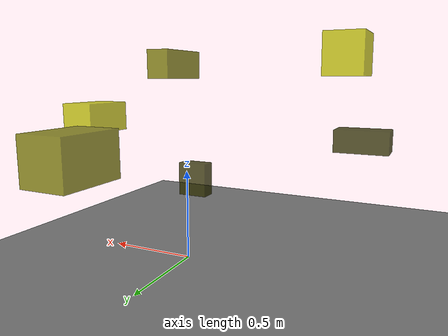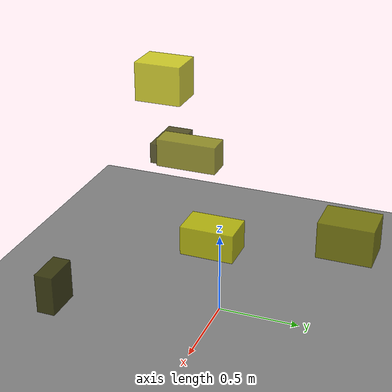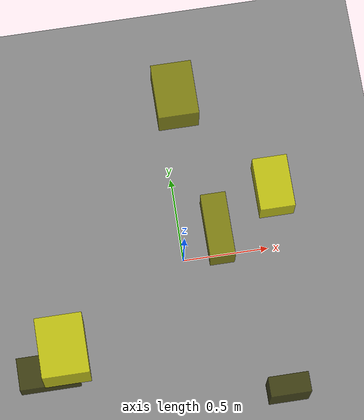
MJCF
<?xml version="1.0"?>
<mujoco model="obstacle_scene">
  <compiler angle="radian" coordinate="local"/>
  <option timestep="0.001" gravity="0 0 -9.81"/>

  <asset>
    <material name="obstacle_mat" rgba="0.8 0.8 0.0 0.8"/>
    <material name="ground_mat" rgba="0.5 0.5 0.5 1"/>
  </asset>

  <worldbody>
    <!-- Ground plane -->
    <geom name="ground" type="plane" size="3 3 0.1" material="ground_mat"/>

    <!-- Obstacles -->
    <body name="obstacle_0" pos="0.455378 -0.872066 0.235764">
      <geom name="obs_0" type="box" size="0.113041 0.056731 0.125321" rgba="0.2 0.2 0.0 0.8"/>
    </body>
    <body name="obstacle_1" pos="0.148301 -0.126740 1.087397">
      <geom name="obs_1" type="box" size="0.065032 0.170709 0.078439" rgba="0.5 0.5 0.0 0.8"/>
    </body>
    <body name="obstacle_2" pos="-0.732606 -0.656245 1.152845">
      <geom name="obs_2" type="box" size="0.120623 0.154612 0.128458" rgba="0.8 0.8 0.0 0.8"/>
    </body>
    <body name="obstacle_3" pos="-0.840628 -0.659255 0.636139">
      <geom name="obs_3" type="box" size="0.162127 0.087321 0.068530" rgba="0.2 0.2 0.0 0.8"/>
    </body>
    <body name="obstacle_4" pos="0.063091 0.771808 0.700602">
      <geom name="obs_4" type="box" size="0.112459 0.155169 0.106287" rgba="0.5 0.5 0.0 0.8"/>
    </body>
    <body name="obstacle_5" pos="0.504492 0.140838 0.796666">
      <geom name="obs_5" type="box" size="0.093849 0.144987 0.079528" rgba="0.8 0.8 0.0 0.8"/>
    </body>
  </worldbody>
</mujoco>
